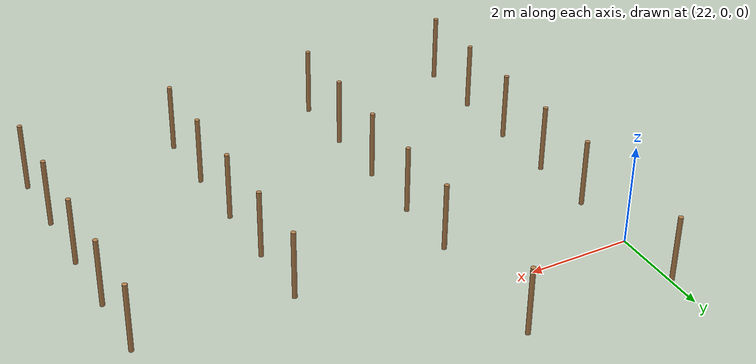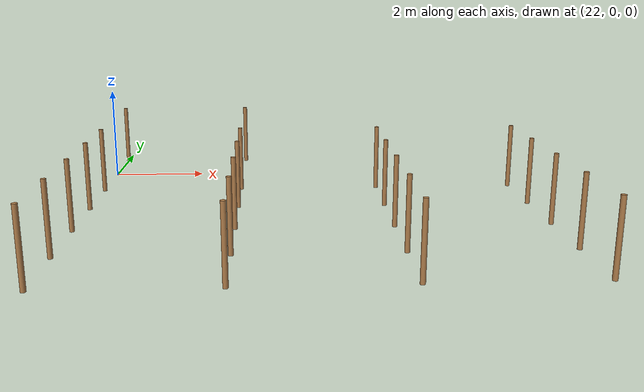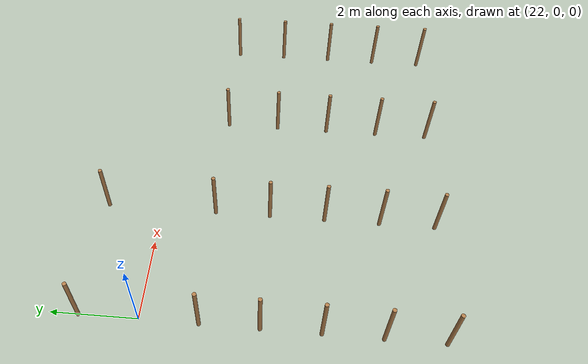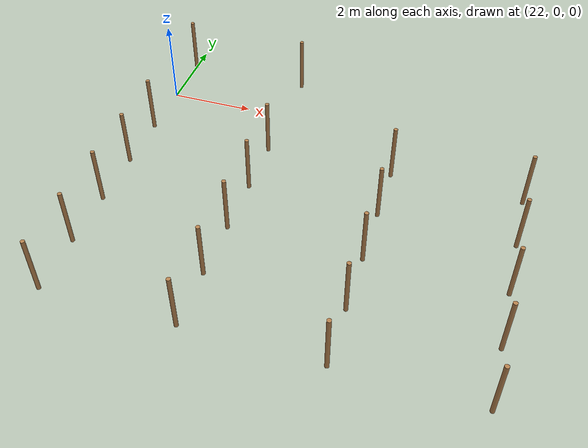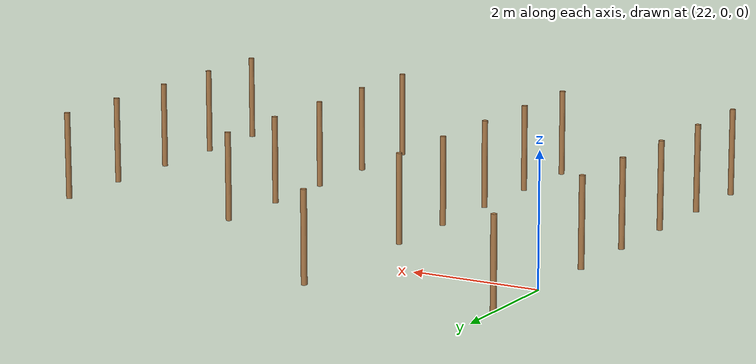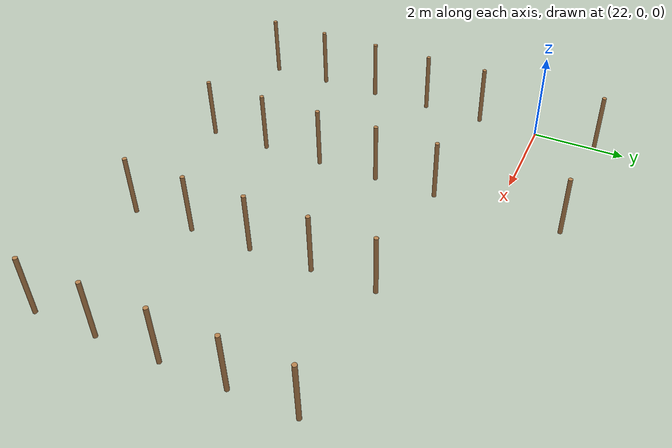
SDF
<sdf version="1.4">
 <world name="default">
  <model name="pole_25">
   <static>1</static>
   <pose>22.000 -6.750 0.691 0.0 0.0 0.0</pose>
   <link name="link">
    <collision name="collision">
     <geometry><cylinder><length>1.38235</length><radius>0.0456111</radius></cylinder></geometry>
    </collision>
    <visual name="visual">
     <geometry><cylinder><length>1.38235</length><radius>0.0456111</radius></cylinder></geometry>
     <material>
      <script><uri>file://media/materials/scripts/gazebo.material</uri><name>Gazebo/WoodFloor</name></script>
      <shader type="vertex"><normal_map>__default__</normal_map></shader>
      <emissive>0 0 0 1</emissive>
      <specular>0.01 0.01 0.01 1</specular>
      <ambient>0.9 0.9 0.9 1</ambient>
      <diffuse>0.09 0.09 0.09 1</diffuse>
     </material>
    </visual>
   </link>
  </model>
  <model name="pole_26">
   <static>1</static>
   <pose>22.000 -5.400 0.691 0.0 0.0 0.0</pose>
   <link name="link">
    <collision name="collision">
     <geometry><cylinder><length>1.38235</length><radius>0.0456111</radius></cylinder></geometry>
    </collision>
    <visual name="visual">
     <geometry><cylinder><length>1.38235</length><radius>0.0456111</radius></cylinder></geometry>
     <material>
      <script><uri>file://media/materials/scripts/gazebo.material</uri><name>Gazebo/WoodFloor</name></script>
      <shader type="vertex"><normal_map>__default__</normal_map></shader>
      <emissive>0 0 0 1</emissive>
      <specular>0.01 0.01 0.01 1</specular>
      <ambient>0.9 0.9 0.9 1</ambient>
      <diffuse>0.09 0.09 0.09 1</diffuse>
     </material>
    </visual>
   </link>
  </model>
  <model name="pole_27">
   <static>1</static>
   <pose>22.000 -4.050 0.691 0.0 0.0 0.0</pose>
   <link name="link">
    <collision name="collision">
     <geometry><cylinder><length>1.38235</length><radius>0.0456111</radius></cylinder></geometry>
    </collision>
    <visual name="visual">
     <geometry><cylinder><length>1.38235</length><radius>0.0456111</radius></cylinder></geometry>
     <material>
      <script><uri>file://media/materials/scripts/gazebo.material</uri><name>Gazebo/WoodFloor</name></script>
      <shader type="vertex"><normal_map>__default__</normal_map></shader>
      <emissive>0 0 0 1</emissive>
      <specular>0.01 0.01 0.01 1</specular>
      <ambient>0.9 0.9 0.9 1</ambient>
      <diffuse>0.09 0.09 0.09 1</diffuse>
     </material>
    </visual>
   </link>
  </model>
  <model name="pole_28">
   <static>1</static>
   <pose>22.000 -2.700 0.691 0.0 0.0 0.0</pose>
   <link name="link">
    <collision name="collision">
     <geometry><cylinder><length>1.38235</length><radius>0.0456111</radius></cylinder></geometry>
    </collision>
    <visual name="visual">
     <geometry><cylinder><length>1.38235</length><radius>0.0456111</radius></cylinder></geometry>
     <material>
      <script><uri>file://media/materials/scripts/gazebo.material</uri><name>Gazebo/WoodFloor</name></script>
      <shader type="vertex"><normal_map>__default__</normal_map></shader>
      <emissive>0 0 0 1</emissive>
      <specular>0.01 0.01 0.01 1</specular>
      <ambient>0.9 0.9 0.9 1</ambient>
      <diffuse>0.09 0.09 0.09 1</diffuse>
     </material>
    </visual>
   </link>
  </model>
  <model name="pole_29">
   <static>1</static>
   <pose>22.000 -1.350 0.691 0.0 0.0 0.0</pose>
   <link name="link">
    <collision name="collision">
     <geometry><cylinder><length>1.38235</length><radius>0.0456111</radius></cylinder></geometry>
    </collision>
    <visual name="visual">
     <geometry><cylinder><length>1.38235</length><radius>0.0456111</radius></cylinder></geometry>
     <material>
      <script><uri>file://media/materials/scripts/gazebo.material</uri><name>Gazebo/WoodFloor</name></script>
      <shader type="vertex"><normal_map>__default__</normal_map></shader>
      <emissive>0 0 0 1</emissive>
      <specular>0.01 0.01 0.01 1</specular>
      <ambient>0.9 0.9 0.9 1</ambient>
      <diffuse>0.09 0.09 0.09 1</diffuse>
     </material>
    </visual>
   </link>
  </model>
  <model name="pole_30">
   <static>1</static>
   <pose>25.000 -6.750 0.691 0.0 0.0 0.0</pose>
   <link name="link">
    <collision name="collision">
     <geometry><cylinder><length>1.38235</length><radius>0.0456111</radius></cylinder></geometry>
    </collision>
    <visual name="visual">
     <geometry><cylinder><length>1.38235</length><radius>0.0456111</radius></cylinder></geometry>
     <material>
      <script><uri>file://media/materials/scripts/gazebo.material</uri><name>Gazebo/WoodFloor</name></script>
      <shader type="vertex"><normal_map>__default__</normal_map></shader>
      <emissive>0 0 0 1</emissive>
      <specular>0.01 0.01 0.01 1</specular>
      <ambient>0.9 0.9 0.9 1</ambient>
      <diffuse>0.09 0.09 0.09 1</diffuse>
     </material>
    </visual>
   </link>
  </model>
  <model name="pole_31">
   <static>1</static>
   <pose>25.000 -5.400 0.691 0.0 0.0 0.0</pose>
   <link name="link">
    <collision name="collision">
     <geometry><cylinder><length>1.38235</length><radius>0.0456111</radius></cylinder></geometry>
    </collision>
    <visual name="visual">
     <geometry><cylinder><length>1.38235</length><radius>0.0456111</radius></cylinder></geometry>
     <material>
      <script><uri>file://media/materials/scripts/gazebo.material</uri><name>Gazebo/WoodFloor</name></script>
      <shader type="vertex"><normal_map>__default__</normal_map></shader>
      <emissive>0 0 0 1</emissive>
      <specular>0.01 0.01 0.01 1</specular>
      <ambient>0.9 0.9 0.9 1</ambient>
      <diffuse>0.09 0.09 0.09 1</diffuse>
     </material>
    </visual>
   </link>
  </model>
  <model name="pole_32">
   <static>1</static>
   <pose>25.000 -4.050 0.691 0.0 0.0 0.0</pose>
   <link name="link">
    <collision name="collision">
     <geometry><cylinder><length>1.38235</length><radius>0.0456111</radius></cylinder></geometry>
    </collision>
    <visual name="visual">
     <geometry><cylinder><length>1.38235</length><radius>0.0456111</radius></cylinder></geometry>
     <material>
      <script><uri>file://media/materials/scripts/gazebo.material</uri><name>Gazebo/WoodFloor</name></script>
      <shader type="vertex"><normal_map>__default__</normal_map></shader>
      <emissive>0 0 0 1</emissive>
      <specular>0.01 0.01 0.01 1</specular>
      <ambient>0.9 0.9 0.9 1</ambient>
      <diffuse>0.09 0.09 0.09 1</diffuse>
     </material>
    </visual>
   </link>
  </model>
  <model name="pole_33">
   <static>1</static>
   <pose>25.000 -2.700 0.691 0.0 0.0 0.0</pose>
   <link name="link">
    <collision name="collision">
     <geometry><cylinder><length>1.38235</length><radius>0.0456111</radius></cylinder></geometry>
    </collision>
    <visual name="visual">
     <geometry><cylinder><length>1.38235</length><radius>0.0456111</radius></cylinder></geometry>
     <material>
      <script><uri>file://media/materials/scripts/gazebo.material</uri><name>Gazebo/WoodFloor</name></script>
      <shader type="vertex"><normal_map>__default__</normal_map></shader>
      <emissive>0 0 0 1</emissive>
      <specular>0.01 0.01 0.01 1</specular>
      <ambient>0.9 0.9 0.9 1</ambient>
      <diffuse>0.09 0.09 0.09 1</diffuse>
     </material>
    </visual>
   </link>
  </model>
  <model name="pole_34">
   <static>1</static>
   <pose>25.000 -1.350 0.691 0.0 0.0 0.0</pose>
   <link name="link">
    <collision name="collision">
     <geometry><cylinder><length>1.38235</length><radius>0.0456111</radius></cylinder></geometry>
    </collision>
    <visual name="visual">
     <geometry><cylinder><length>1.38235</length><radius>0.0456111</radius></cylinder></geometry>
     <material>
      <script><uri>file://media/materials/scripts/gazebo.material</uri><name>Gazebo/WoodFloor</name></script>
      <shader type="vertex"><normal_map>__default__</normal_map></shader>
      <emissive>0 0 0 1</emissive>
      <specular>0.01 0.01 0.01 1</specular>
      <ambient>0.9 0.9 0.9 1</ambient>
      <diffuse>0.09 0.09 0.09 1</diffuse>
     </material>
    </visual>
   </link>
  </model>
  <model name="pole_35">
   <static>1</static>
   <pose>28.000 -6.750 0.691 0.0 0.0 0.0</pose>
   <link name="link">
    <collision name="collision">
     <geometry><cylinder><length>1.38235</length><radius>0.0456111</radius></cylinder></geometry>
    </collision>
    <visual name="visual">
     <geometry><cylinder><length>1.38235</length><radius>0.0456111</radius></cylinder></geometry>
     <material>
      <script><uri>file://media/materials/scripts/gazebo.material</uri><name>Gazebo/WoodFloor</name></script>
      <shader type="vertex"><normal_map>__default__</normal_map></shader>
      <emissive>0 0 0 1</emissive>
      <specular>0.01 0.01 0.01 1</specular>
      <ambient>0.9 0.9 0.9 1</ambient>
      <diffuse>0.09 0.09 0.09 1</diffuse>
     </material>
    </visual>
   </link>
  </model>
  <model name="pole_36">
   <static>1</static>
   <pose>28.000 -5.400 0.691 0.0 0.0 0.0</pose>
   <link name="link">
    <collision name="collision">
     <geometry><cylinder><length>1.38235</length><radius>0.0456111</radius></cylinder></geometry>
    </collision>
    <visual name="visual">
     <geometry><cylinder><length>1.38235</length><radius>0.0456111</radius></cylinder></geometry>
     <material>
      <script><uri>file://media/materials/scripts/gazebo.material</uri><name>Gazebo/WoodFloor</name></script>
      <shader type="vertex"><normal_map>__default__</normal_map></shader>
      <emissive>0 0 0 1</emissive>
      <specular>0.01 0.01 0.01 1</specular>
      <ambient>0.9 0.9 0.9 1</ambient>
      <diffuse>0.09 0.09 0.09 1</diffuse>
     </material>
    </visual>
   </link>
  </model>
  <model name="pole_37">
   <static>1</static>
   <pose>28.000 -4.050 0.691 0.0 0.0 0.0</pose>
   <link name="link">
    <collision name="collision">
     <geometry><cylinder><length>1.38235</length><radius>0.0456111</radius></cylinder></geometry>
    </collision>
    <visual name="visual">
     <geometry><cylinder><length>1.38235</length><radius>0.0456111</radius></cylinder></geometry>
     <material>
      <script><uri>file://media/materials/scripts/gazebo.material</uri><name>Gazebo/WoodFloor</name></script>
      <shader type="vertex"><normal_map>__default__</normal_map></shader>
      <emissive>0 0 0 1</emissive>
      <specular>0.01 0.01 0.01 1</specular>
      <ambient>0.9 0.9 0.9 1</ambient>
      <diffuse>0.09 0.09 0.09 1</diffuse>
     </material>
    </visual>
   </link>
  </model>
  <model name="pole_38">
   <static>1</static>
   <pose>28.000 -2.700 0.691 0.0 0.0 0.0</pose>
   <link name="link">
    <collision name="collision">
     <geometry><cylinder><length>1.38235</length><radius>0.0456111</radius></cylinder></geometry>
    </collision>
    <visual name="visual">
     <geometry><cylinder><length>1.38235</length><radius>0.0456111</radius></cylinder></geometry>
     <material>
      <script><uri>file://media/materials/scripts/gazebo.material</uri><name>Gazebo/WoodFloor</name></script>
      <shader type="vertex"><normal_map>__default__</normal_map></shader>
      <emissive>0 0 0 1</emissive>
      <specular>0.01 0.01 0.01 1</specular>
      <ambient>0.9 0.9 0.9 1</ambient>
      <diffuse>0.09 0.09 0.09 1</diffuse>
     </material>
    </visual>
   </link>
  </model>
  <model name="pole_39">
   <static>1</static>
   <pose>28.000 -1.350 0.691 0.0 0.0 0.0</pose>
   <link name="link">
    <collision name="collision">
     <geometry><cylinder><length>1.38235</length><radius>0.0456111</radius></cylinder></geometry>
    </collision>
    <visual name="visual">
     <geometry><cylinder><length>1.38235</length><radius>0.0456111</radius></cylinder></geometry>
     <material>
      <script><uri>file://media/materials/scripts/gazebo.material</uri><name>Gazebo/WoodFloor</name></script>
      <shader type="vertex"><normal_map>__default__</normal_map></shader>
      <emissive>0 0 0 1</emissive>
      <specular>0.01 0.01 0.01 1</specular>
      <ambient>0.9 0.9 0.9 1</ambient>
      <diffuse>0.09 0.09 0.09 1</diffuse>
     </material>
    </visual>
   </link>
  </model>
  <model name="pole_40">
   <static>1</static>
   <pose>31.000 -6.750 0.691 0.0 0.0 0.0</pose>
   <link name="link">
    <collision name="collision">
     <geometry><cylinder><length>1.38235</length><radius>0.0456111</radius></cylinder></geometry>
    </collision>
    <visual name="visual">
     <geometry><cylinder><length>1.38235</length><radius>0.0456111</radius></cylinder></geometry>
     <material>
      <script><uri>file://media/materials/scripts/gazebo.material</uri><name>Gazebo/WoodFloor</name></script>
      <shader type="vertex"><normal_map>__default__</normal_map></shader>
      <emissive>0 0 0 1</emissive>
      <specular>0.01 0.01 0.01 1</specular>
      <ambient>0.9 0.9 0.9 1</ambient>
      <diffuse>0.09 0.09 0.09 1</diffuse>
     </material>
    </visual>
   </link>
  </model>
  <model name="pole_41">
   <static>1</static>
   <pose>31.000 -5.400 0.691 0.0 0.0 0.0</pose>
   <link name="link">
    <collision name="collision">
     <geometry><cylinder><length>1.38235</length><radius>0.0456111</radius></cylinder></geometry>
    </collision>
    <visual name="visual">
     <geometry><cylinder><length>1.38235</length><radius>0.0456111</radius></cylinder></geometry>
     <material>
      <script><uri>file://media/materials/scripts/gazebo.material</uri><name>Gazebo/WoodFloor</name></script>
      <shader type="vertex"><normal_map>__default__</normal_map></shader>
      <emissive>0 0 0 1</emissive>
      <specular>0.01 0.01 0.01 1</specular>
      <ambient>0.9 0.9 0.9 1</ambient>
      <diffuse>0.09 0.09 0.09 1</diffuse>
     </material>
    </visual>
   </link>
  </model>
  <model name="pole_42">
   <static>1</static>
   <pose>31.000 -4.050 0.691 0.0 0.0 0.0</pose>
   <link name="link">
    <collision name="collision">
     <geometry><cylinder><length>1.38235</length><radius>0.0456111</radius></cylinder></geometry>
    </collision>
    <visual name="visual">
     <geometry><cylinder><length>1.38235</length><radius>0.0456111</radius></cylinder></geometry>
     <material>
      <script><uri>file://media/materials/scripts/gazebo.material</uri><name>Gazebo/WoodFloor</name></script>
      <shader type="vertex"><normal_map>__default__</normal_map></shader>
      <emissive>0 0 0 1</emissive>
      <specular>0.01 0.01 0.01 1</specular>
      <ambient>0.9 0.9 0.9 1</ambient>
      <diffuse>0.09 0.09 0.09 1</diffuse>
     </material>
    </visual>
   </link>
  </model>
  <model name="pole_43">
   <static>1</static>
   <pose>31.000 -2.700 0.691 0.0 0.0 0.0</pose>
   <link name="link">
    <collision name="collision">
     <geometry><cylinder><length>1.38235</length><radius>0.0456111</radius></cylinder></geometry>
    </collision>
    <visual name="visual">
     <geometry><cylinder><length>1.38235</length><radius>0.0456111</radius></cylinder></geometry>
     <material>
      <script><uri>file://media/materials/scripts/gazebo.material</uri><name>Gazebo/WoodFloor</name></script>
      <shader type="vertex"><normal_map>__default__</normal_map></shader>
      <emissive>0 0 0 1</emissive>
      <specular>0.01 0.01 0.01 1</specular>
      <ambient>0.9 0.9 0.9 1</ambient>
      <diffuse>0.09 0.09 0.09 1</diffuse>
     </material>
    </visual>
   </link>
  </model>
  <model name="pole_44">
   <static>1</static>
   <pose>31.000 -1.350 0.691 0.0 0.0 0.0</pose>
   <link name="link">
    <collision name="collision">
     <geometry><cylinder><length>1.38235</length><radius>0.0456111</radius></cylinder></geometry>
    </collision>
    <visual name="visual">
     <geometry><cylinder><length>1.38235</length><radius>0.0456111</radius></cylinder></geometry>
     <material>
      <script><uri>file://media/materials/scripts/gazebo.material</uri><name>Gazebo/WoodFloor</name></script>
      <shader type="vertex"><normal_map>__default__</normal_map></shader>
      <emissive>0 0 0 1</emissive>
      <specular>0.01 0.01 0.01 1</specular>
      <ambient>0.9 0.9 0.9 1</ambient>
      <diffuse>0.09 0.09 0.09 1</diffuse>
     </material>
    </visual>
   </link>
  </model>
  <model name="pole_70">
   <static>1</static>
   <pose>22.000 1.350 0.691 0.0 0.0 0.0</pose>
   <link name="link">
    <collision name="collision">
     <geometry><cylinder><length>1.38235</length><radius>0.0456111</radius></cylinder></geometry>
    </collision>
    <visual name="visual">
     <geometry><cylinder><length>1.38235</length><radius>0.0456111</radius></cylinder></geometry>
     <material>
      <script><uri>file://media/materials/scripts/gazebo.material</uri><name>Gazebo/WoodFloor</name></script>
      <shader type="vertex"><normal_map>__default__</normal_map></shader>
      <emissive>0 0 0 1</emissive>
      <specular>0.01 0.01 0.01 1</specular>
      <ambient>0.9 0.9 0.9 1</ambient>
      <diffuse>0.09 0.09 0.09 1</diffuse>
     </material>
    </visual>
   </link>
  </model>
  <model name="pole_75">
   <static>1</static>
   <pose>25.000 1.350 0.691 0.0 0.0 0.0</pose>
   <link name="link">
    <collision name="collision">
     <geometry><cylinder><length>1.38235</length><radius>0.0456111</radius></cylinder></geometry>
    </collision>
    <visual name="visual">
     <geometry><cylinder><length>1.38235</length><radius>0.0456111</radius></cylinder></geometry>
     <material>
      <script><uri>file://media/materials/scripts/gazebo.material</uri><name>Gazebo/WoodFloor</name></script>
      <shader type="vertex"><normal_map>__default__</normal_map></shader>
      <emissive>0 0 0 1</emissive>
      <specular>0.01 0.01 0.01 1</specular>
      <ambient>0.9 0.9 0.9 1</ambient>
      <diffuse>0.09 0.09 0.09 1</diffuse>
     </material>
    </visual>
   </link>
  </model>
  <include><uri>model://sun</uri></include>
 </world>
</sdf>
